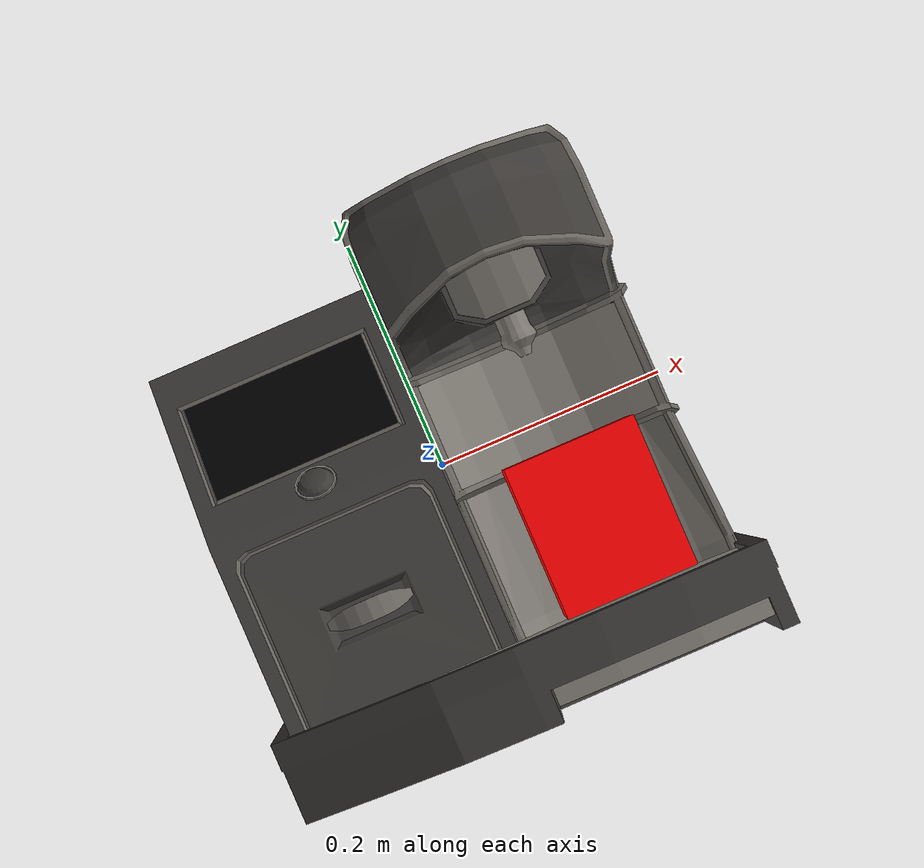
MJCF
<mujoco model="coffee_machine_30">
  <compiler autolimits="true" boundmass="0.01" angle="radian"/>
  <default>
    <default class="/">
      <default class="__VISUAL_MJT__">
        <geom contype="0" conaffinity="0" group="0"/>
      </default>
      <default class="__STRUCTURAL_MJT__">
        <geom contype="8" conaffinity="15" group="4" friction="0.90000000000000002 0.90000000000000002 0.001" solref="0.025000000000000001 1" solimp="0.998 0.998 0.001"/>
      </default>
      <default class="__DYNAMIC_MJT__">
        <geom contype="1" conaffinity="15" group="4" friction="0.90000000000000002 0.90000000000000002 0.001" solref="0.025000000000000001 1" solimp="0.998 0.998 0.001"/>
      </default>
    </default>
  </default>
  <asset>
    <material name="material_coffee_machine_backup_mat" class="/" specular="0.5" shininess="0.5" rgba="0.5 0.5 0.5 1"/>
    <material name="material_Coffee_Machine_Readout_Mat_Off" class="/" specular="0.5" shininess="0.5" rgba="0 0 0 1"/>
    <texture name="Coffee_Machine_Decal_Mat" type="2d" file="Coffee_Machine_Decal_AlbedoTransparency.png"/>
    <material name="material_Coffee_Machine_Decal_Mat" class="/" texture="Coffee_Machine_Decal_Mat" specular="0.5" shininess="0.5" rgba="1 1 1 1"/>
    <texture name="Coffee_Machine_Metal_Mat" type="2d" file="MetalBumpy_AlbedoTransparency.png"/>
    <material name="material_Coffee_Machine_Metal_Mat" class="/" texture="Coffee_Machine_Metal_Mat" specular="0.5" shininess="0.5" rgba="0.66176469999999998 0.66176469999999998 0.66176469999999998 1"/>
    <texture name="Coffee_Machine_Secondary5_Color_Mat" type="2d" file="BrushedIron_AlbedoTransparency.png"/>
    <material name="material_Coffee_Machine_Secondary5_Color_Mat" class="/" texture="Coffee_Machine_Secondary5_Color_Mat" specular="0.5" shininess="0.5" rgba="0.55147060000000003 0.55147060000000003 0.55147060000000003 1"/>
    <texture name="Coffee_Machine_Primary5_Color_Mat" type="2d" file="BrushedAluminum_AlbedoTransparency.png"/>
    <material name="material_Coffee_Machine_Primary5_Color_Mat" class="/" texture="Coffee_Machine_Primary5_Color_Mat" specular="0.5" shininess="0.5" rgba="0.32352940000000002 0.32352940000000002 0.32352940000000002 1"/>
    <mesh name="coffee_machine_30_coffee_machine_30_0" class="/" file="coffee_machine_30_coffee_machine_30/coffee_machine_30_coffee_machine_30_0.obj" scale="1 1 1"/>
    <mesh name="coffee_machine_30_coffee_machine_30_1" class="/" file="coffee_machine_30_coffee_machine_30/coffee_machine_30_coffee_machine_30_1.obj" scale="1 1 1"/>
    <mesh name="coffee_machine_30_coffee_machine_30_2" class="/" file="coffee_machine_30_coffee_machine_30/coffee_machine_30_coffee_machine_30_2.obj" scale="1 1 1"/>
    <mesh name="coffee_machine_30_coffee_machine_30_3" class="/" file="coffee_machine_30_coffee_machine_30/coffee_machine_30_coffee_machine_30_3.obj" scale="1 1 1"/>
    <mesh name="coffee_machine_30_coffee_machine_30_4" class="/" file="coffee_machine_30_coffee_machine_30/coffee_machine_30_coffee_machine_30_4.obj" scale="1 1 1"/>
    <mesh name="coffee_machine_30_coffee_machine_30_5" class="/" file="coffee_machine_30_coffee_machine_30/coffee_machine_30_coffee_machine_30_5.obj" scale="1 1 1"/>
  </asset>
  <worldbody>
    <body name="coffee_machine_30">
      <joint name="coffee_machine_30_free" class="/" type="free" pos="0 0 0" axis="0 0 1" stiffness="0" range="0 0" armature="0" damping="0.10000000000000001" frictionloss="0"/>
      <body name="coffee_machine_30_coffee_machine_30" pos="-0.0067099999999999998 -0.23211000000000001 -0.073590000000000003" quat="1 0 0 0">
        <geom name="coffee_machine_30_coffee_machine_30_0" class="__VISUAL_MJT__" type="mesh" material="material_coffee_machine_backup_mat" shellinertia="true" mesh="coffee_machine_30_coffee_machine_30_0"/>
        <geom name="coffee_machine_30_coffee_machine_30_1" class="__VISUAL_MJT__" type="mesh" material="material_Coffee_Machine_Readout_Mat_Off" shellinertia="true" mesh="coffee_machine_30_coffee_machine_30_1"/>
        <geom name="coffee_machine_30_coffee_machine_30_2" class="__VISUAL_MJT__" type="mesh" material="material_Coffee_Machine_Decal_Mat" shellinertia="true" mesh="coffee_machine_30_coffee_machine_30_2"/>
        <geom name="coffee_machine_30_coffee_machine_30_3" class="__VISUAL_MJT__" type="mesh" material="material_Coffee_Machine_Metal_Mat" shellinertia="false" mesh="coffee_machine_30_coffee_machine_30_3"/>
        <geom name="coffee_machine_30_coffee_machine_30_4" class="__VISUAL_MJT__" type="mesh" material="material_Coffee_Machine_Secondary5_Color_Mat" shellinertia="false" mesh="coffee_machine_30_coffee_machine_30_4"/>
        <geom name="coffee_machine_30_coffee_machine_30_5" class="__VISUAL_MJT__" type="mesh" material="material_Coffee_Machine_Primary5_Color_Mat" shellinertia="false" mesh="coffee_machine_30_coffee_machine_30_5"/>
        <site name="coffee_machine_30_Receptacle_0" class="/" type="box" rgba="1 0 0 1" size="0.057288449257612228 0.066042482852935791 0.056572377681732178" pos="0.10769999772310257 0.14204248785972595 0.16300000250339508" quat="1 0 0 0"/>
        <geom name="coffee_machine_30_PrimitiveCollider_0" class="__DYNAMIC_MJT__" type="box" size="0.11619448661804199 0.20414087176322937 0.13503006100654602" rgba="0 1 0 1" pos="-0.10018467903137207 0.20414087176322937 -0.010369569063186646" quat="1 0 0 0"/>
        <geom name="coffee_machine_30_PrimitiveCollider_1" class="__DYNAMIC_MJT__" type="box" size="0.11268305778503418 0.037626206874847412 0.21447089314460754" rgba="0 1 0 1" pos="0.10305142402648926 0.037626206874847412 0.069071263074874878" quat="1 0 0 0"/>
        <geom name="coffee_machine_30_PrimitiveCollider_2" class="__DYNAMIC_MJT__" type="box" size="0.12833514809608459 0.037626206874847412 0.15052799880504608" rgba="0 1 0 1" pos="-0.045219123363494873 0.037626206874847412 0.098049208521842957" quat="0.96592599153518677 0 0.25881856679916382 0"/>
        <geom name="coffee_machine_30_PrimitiveCollider_3" class="__DYNAMIC_MJT__" type="box" size="0.11619448661804199 0.21462836861610413 0.11755087971687317" rgba="0 1 0 1" pos="0.10201531648635864 0.21462836861610413 -0.027848750352859497" quat="1 0 0 0"/>
        <geom name="coffee_machine_30_PrimitiveCollider_4" class="__DYNAMIC_MJT__" type="box" size="0.11619448661804199 0.071649014949798584 0.15600490570068359" rgba="0 1 0 1" pos="0.10201525688171387 0.39256596565246582 0.064441204071044922" quat="1 0 0 0"/>
      </body>
    </body>
  </worldbody>
</mujoco>
